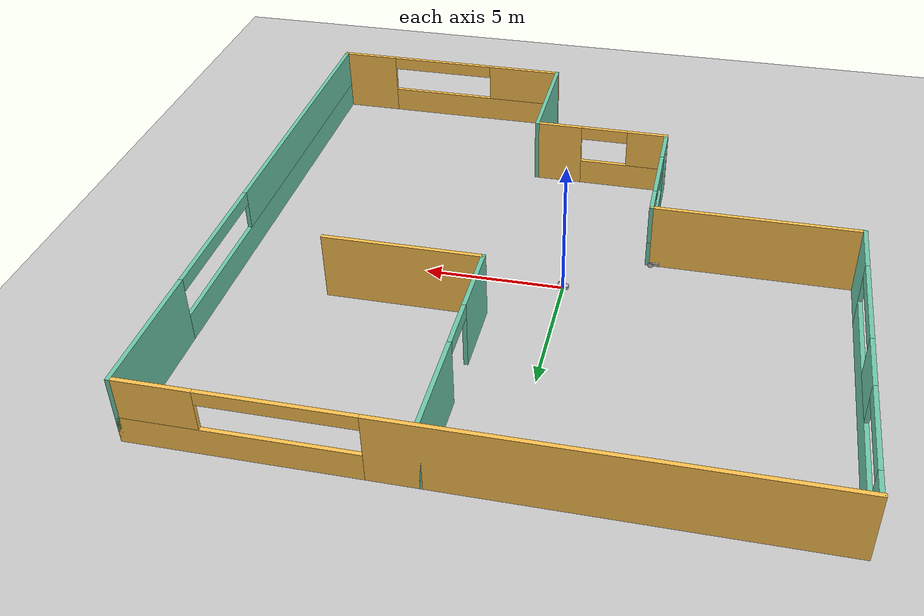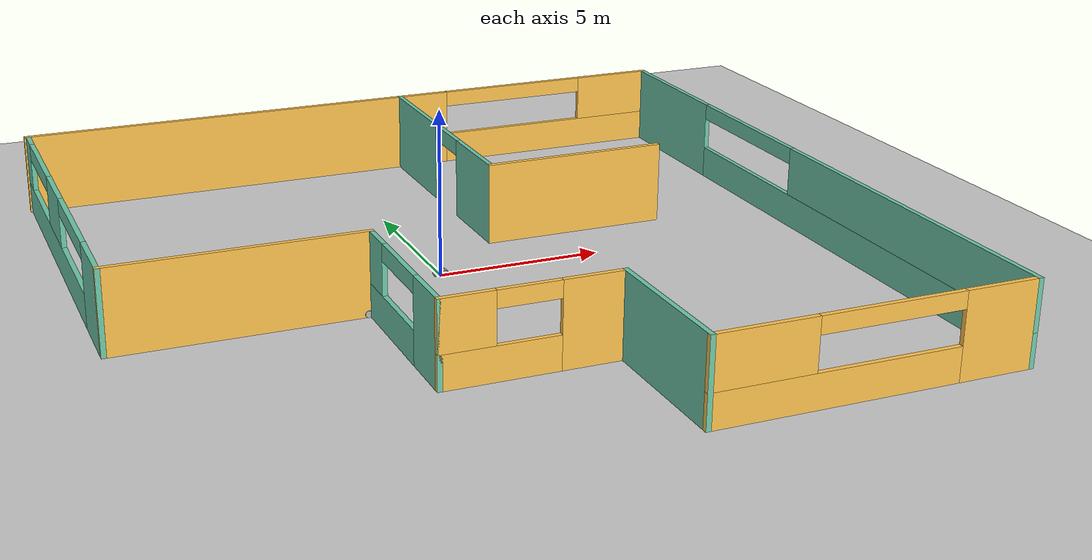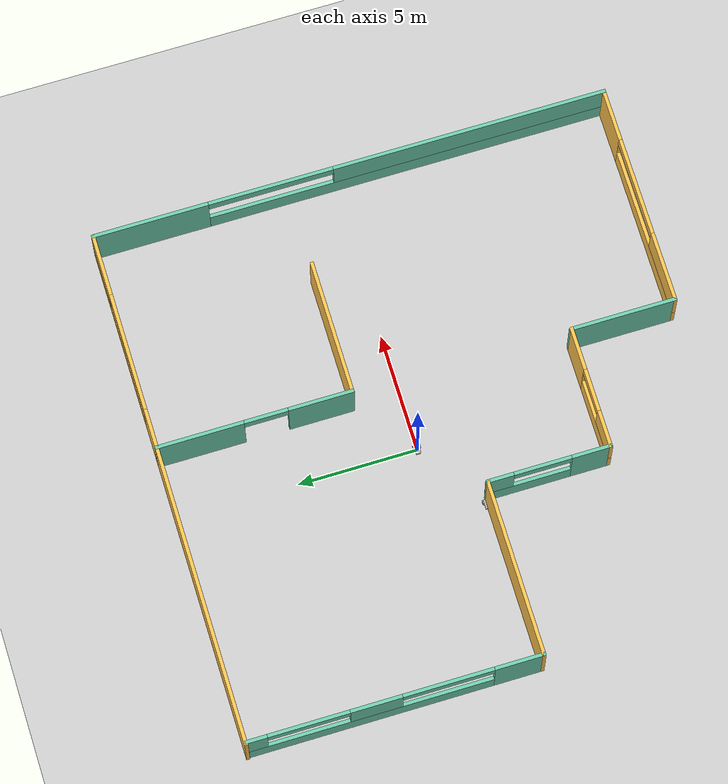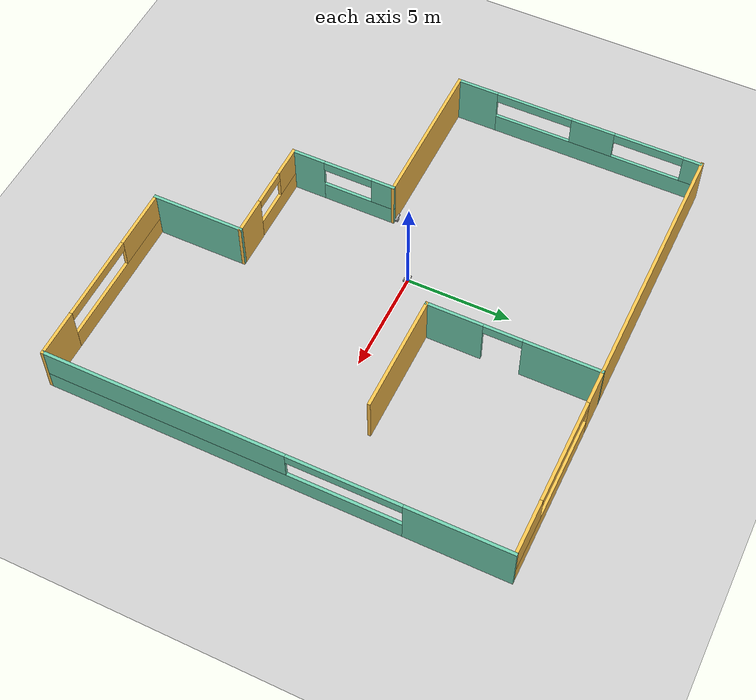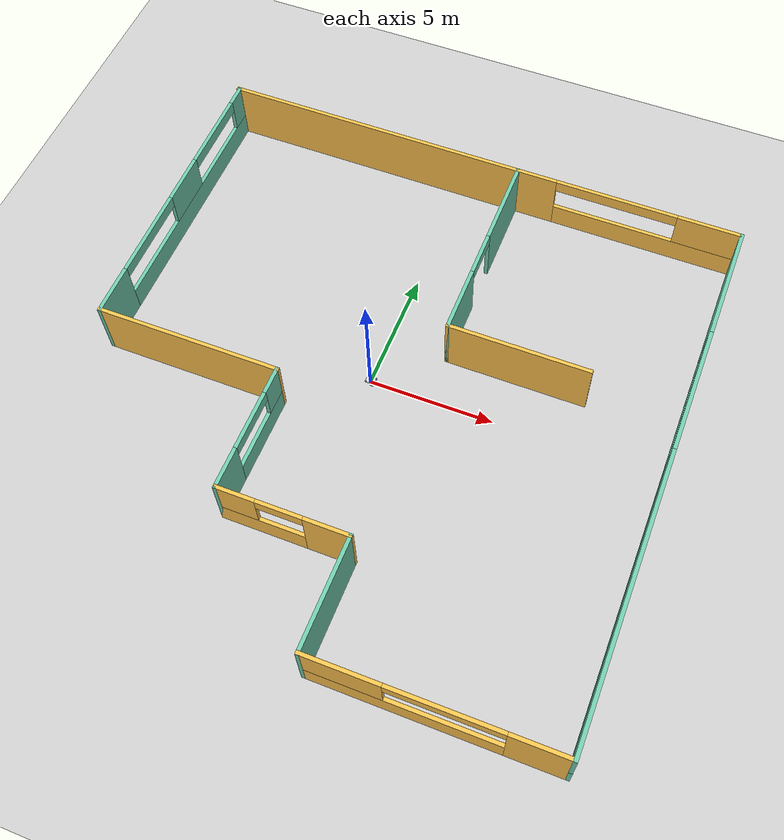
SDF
<sdf version="1.7">
 <world name="default">
  <plugin name="hello" filename="libhello.so"/>
  <include><uri>model://sun</uri></include>
  <include><uri>model://ground_plane</uri></include>
  <gravity>0 0 -9.8</gravity>
  <magnetic_field>6e-06 2.3e-05 -4.2e-05</magnetic_field>
  <atmosphere type="adiabatic"/>
  <physics type="ode">
   <max_step_size>0.001</max_step_size>
   <real_time_factor>1</real_time_factor>
   <real_time_update_rate>1000</real_time_update_rate>
  </physics>
  <scene><ambient>0.4 0.4 0.4 1</ambient><background>0.7 0.7 0.7 1</background><shadows>1</shadows></scene>
  <spherical_coordinates>
   <surface_model>EARTH_WGS84</surface_model>
   <latitude_deg>0</latitude_deg>
   <longitude_deg>0</longitude_deg>
   <elevation>0</elevation>
   <heading_deg>0</heading_deg>
  </spherical_coordinates>
  <model name="ground_floor">
   <pose>0.089475 -0.156422 0 0 -0 0</pose>
   <include><uri>model://ground_floor</uri></include>
  </model>
  <model name="robot_1"><include><uri>model://robot/simple_chassis</uri></include></model>
  <model name="robot_2">
   <include><uri>model://robot/simple_chassis</uri><pose>-3 -2 0 0 0 0</pose></include>
  </model>
 </world>
</sdf>

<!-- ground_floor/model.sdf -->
<sdf version='1.7'>
    <model name='ground_floor'>
      <pose>0.672639 -0.551121 0 0 -0 0</pose>
      <link name='Wall_0'>
        <pose>-1e-06 10.8 0 0 -0 0</pose>
        <visual name='Wall_0_Visual_0'>
          <pose>-3.85063 0 1.25 0 -0 0</pose>
          <geometry>
            <box>
              <size>14.2987 0.15 2.5</size>
            </box>
          </geometry>
          <material>
            <script>
              <uri>file://media/materials/scripts/gazebo.material</uri>
              <name>Gazebo/Grey</name>
            </script>
            <ambient>1 0.764706 0.305882 1</ambient>
          </material>
          <meta>
            <layer>0</layer>
          </meta>
        </visual>
        <collision name='Wall_0_Collision_0'>
          <geometry>
            <box>
              <size>14.2987 0.15 2.5</size>
            </box>
          </geometry>
          <pose>-3.85063 0 1.25 0 -0 0</pose>
          <max_contacts>10</max_contacts>
          <surface>
            <contact>
              <ode/>
            </contact>
            <bounce/>
            <friction>
              <torsional>
                <ode/>
              </torsional>
              <ode/>
            </friction>
          </surface>
        </collision>
        <visual name='Wall_0_Visual_1'>
          <pose>7.14937 0 0.5 0 -0 0</pose>
          <geometry>
            <box>
              <size>7.70126 0.15 1</size>
            </box>
          </geometry>
          <material>
            <script>
              <uri>file://media/materials/scripts/gazebo.material</uri>
              <name>Gazebo/Grey</name>
            </script>
            <ambient>1 0.764706 0.305882 1</ambient>
          </material>
          <meta>
            <layer>0</layer>
          </meta>
        </visual>
        <collision name='Wall_0_Collision_1'>
          <geometry>
            <box>
              <size>7.70126 0.15 1</size>
            </box>
          </geometry>
          <pose>7.14937 0 0.5 0 -0 0</pose>
          <max_contacts>10</max_contacts>
          <surface>
            <contact>
              <ode/>
            </contact>
            <bounce/>
            <friction>
              <torsional>
                <ode/>
              </torsional>
              <ode/>
            </friction>
          </surface>
        </collision>
        <visual name='Wall_0_Visual_2'>
          <pose>9.66137 0 1.75 0 -0 0</pose>
          <geometry>
            <box>
              <size>2.67726 0.15 1.5</size>
            </box>
          </geometry>
          <material>
            <script>
              <uri>file://media/materials/scripts/gazebo.material</uri>
              <name>Gazebo/Grey</name>
            </script>
            <ambient>1 0.764706 0.305882 1</ambient>
          </material>
          <meta>
            <layer>0</layer>
          </meta>
        </visual>
        <collision name='Wall_0_Collision_2'>
          <geometry>
            <box>
              <size>2.67726 0.15 1.5</size>
            </box>
          </geometry>
          <pose>9.66137 0 1.75 0 -0 0</pose>
          <max_contacts>10</max_contacts>
          <surface>
            <contact>
              <ode/>
            </contact>
            <bounce/>
            <friction>
              <torsional>
                <ode/>
              </torsional>
              <ode/>
            </friction>
          </surface>
        </collision>
        <visual name='Wall_0_Visual_3'>
          <pose>5.81074 0 2.25 0 -0 0</pose>
          <geometry>
            <box>
              <size>5.024 0.15 0.5</size>
            </box>
          </geometry>
          <material>
            <script>
              <uri>file://media/materials/scripts/gazebo.material</uri>
              <name>Gazebo/Grey</name>
            </script>
            <ambient>1 0.764706 0.305882 1</ambient>
          </material>
          <meta>
            <layer>0</layer>
          </meta>
        </visual>
        <collision name='Wall_0_Collision_3'>
          <geometry>
            <box>
              <size>5.024 0.15 0.5</size>
            </box>
          </geometry>
          <pose>5.81074 0 2.25 0 -0 0</pose>
          <max_contacts>10</max_contacts>
          <surface>
            <contact>
              <ode/>
            </contact>
            <bounce/>
            <friction>
              <torsional>
                <ode/>
              </torsional>
              <ode/>
            </friction>
          </surface>
        </collision>
        <self_collide>0</self_collide>
        <enable_wind>0</enable_wind>
        <kinematic>0</kinematic>
      </link>
      <link name='Wall_1'>
        <pose>10.925 0 0 0 0 -1.5708</pose>
        <visual name='Wall_1_Visual_0'>
          <pose>-8.42693 0 1.25 0 -0 0</pose>
          <geometry>
            <box>
              <size>4.89614 0.15 2.5</size>
            </box>
          </geometry>
          <material>
            <script>
              <uri>file://media/materials/scripts/gazebo.material</uri>
              <name>Gazebo/Grey</name>
            </script>
            <ambient>0.435294 0.796078 0.67451 1</ambient>
          </material>
          <meta>
            <layer>0</layer>
          </meta>
        </visual>
        <collision name='Wall_1_Collision_0'>
          <geometry>
            <box>
              <size>4.89614 0.15 2.5</size>
            </box>
          </geometry>
          <pose>-8.42693 0 1.25 0 -0 0</pose>
          <max_contacts>10</max_contacts>
          <surface>
            <contact>
              <ode/>
            </contact>
            <bounce/>
            <friction>
              <torsional>
                <ode/>
              </torsional>
              <ode/>
            </friction>
          </surface>
        </collision>
        <visual name='Wall_1_Visual_1'>
          <pose>2.44807 0 0.5 0 -0 0</pose>
          <geometry>
            <box>
              <size>16.8539 0.15 1</size>
            </box>
          </geometry>
          <material>
            <script>
              <uri>file://media/materials/scripts/gazebo.material</uri>
              <name>Gazebo/Grey</name>
            </script>
            <ambient>0.435294 0.796078 0.67451 1</ambient>
          </material>
          <meta>
            <layer>0</layer>
          </meta>
        </visual>
        <collision name='Wall_1_Collision_1'>
          <geometry>
            <box>
              <size>16.8539 0.15 1</size>
            </box>
          </geometry>
          <pose>2.44807 0 0.5 0 -0 0</pose>
          <max_contacts>10</max_contacts>
          <surface>
            <contact>
              <ode/>
            </contact>
            <bounce/>
            <friction>
              <torsional>
                <ode/>
              </torsional>
              <ode/>
            </friction>
          </surface>
        </collision>
        <visual name='Wall_1_Visual_2'>
          <pose>5.08057 0 1.75 0 -0 0</pose>
          <geometry>
            <box>
              <size>11.5889 0.15 1.5</size>
            </box>
          </geometry>
          <material>
            <script>
              <uri>file://media/materials/scripts/gazebo.material</uri>
              <name>Gazebo/Grey</name>
            </script>
            <ambient>0.435294 0.796078 0.67451 1</ambient>
          </material>
          <meta>
            <layer>0</layer>
          </meta>
        </visual>
        <collision name='Wall_1_Collision_2'>
          <geometry>
            <box>
              <size>11.5889 0.15 1.5</size>
            </box>
          </geometry>
          <pose>5.08057 0 1.75 0 -0 0</pose>
          <max_contacts>10</max_contacts>
          <surface>
            <contact>
              <ode/>
            </contact>
            <bounce/>
            <friction>
              <torsional>
                <ode/>
              </torsional>
              <ode/>
            </friction>
          </surface>
        </collision>
        <visual name='Wall_1_Visual_3'>
          <pose>-3.34636 0 2.25 0 -0 0</pose>
          <geometry>
            <box>
              <size>5.265 0.15 0.5</size>
            </box>
          </geometry>
          <material>
            <script>
              <uri>file://media/materials/scripts/gazebo.material</uri>
              <name>Gazebo/Grey</name>
            </script>
            <ambient>0.435294 0.796078 0.67451 1</ambient>
          </material>
          <meta>
            <layer>0</layer>
          </meta>
        </visual>
        <collision name='Wall_1_Collision_3'>
          <geometry>
            <box>
              <size>5.265 0.15 0.5</size>
            </box>
          </geometry>
          <pose>-3.34636 0 2.25 0 -0 0</pose>
          <max_contacts>10</max_contacts>
          <surface>
            <contact>
              <ode/>
            </contact>
            <bounce/>
            <friction>
              <torsional>
                <ode/>
              </torsional>
              <ode/>
            </friction>
          </surface>
        </collision>
        <self_collide>0</self_collide>
        <enable_wind>0</enable_wind>
        <kinematic>0</kinematic>
      </link>
      <link name='Wall_10'>
        <collision name='Wall_10_Collision'>
          <geometry>
            <box>
              <size>5.75 0.15 2.5</size>
            </box>
          </geometry>
          <pose>0 0 1.25 0 -0 0</pose>
          <max_contacts>10</max_contacts>
          <surface>
            <contact>
              <ode/>
            </contact>
            <bounce/>
            <friction>
              <torsional>
                <ode/>
              </torsional>
              <ode/>
            </friction>
          </surface>
        </collision>
        <visual name='Wall_10_Visual'>
          <pose>0 0 1.25 0 -0 0</pose>
          <geometry>
            <box>
              <size>5.75 0.15 2.5</size>
            </box>
          </geometry>
          <material>
            <script>
              <uri>file://media/materials/scripts/gazebo.material</uri>
              <name>Gazebo/Grey</name>
            </script>
            <ambient>1 0.764706 0.305882 1</ambient>
          </material>
          <meta>
            <layer>0</layer>
          </meta>
        </visual>
        <pose>4.43646 2.7 0 0 -0 0</pose>
        <self_collide>0</self_collide>
        <enable_wind>0</enable_wind>
        <kinematic>0</kinematic>
      </link>
      <link name='Wall_2'>
        <pose>6.25 -10.8 0 0 -0 3.14159</pose>
        <visual name='Wall_2_Visual_0'>
          <pose>-3.60608 0 1.25 0 -0 0</pose>
          <geometry>
            <box>
              <size>2.28785 0.15 2.5</size>
            </box>
          </geometry>
          <material>
            <script>
              <uri>file://media/materials/scripts/gazebo.material</uri>
              <name>Gazebo/Grey</name>
            </script>
            <ambient>1 0.764706 0.305882 1</ambient>
          </material>
          <meta>
            <layer>0</layer>
          </meta>
        </visual>
        <collision name='Wall_2_Collision_0'>
          <geometry>
            <box>
              <size>2.28785 0.15 2.5</size>
            </box>
          </geometry>
          <pose>-3.60608 0 1.25 0 -0 0</pose>
          <max_contacts>10</max_contacts>
          <surface>
            <contact>
              <ode/>
            </contact>
            <bounce/>
            <friction>
              <torsional>
                <ode/>
              </torsional>
              <ode/>
            </friction>
          </surface>
        </collision>
        <visual name='Wall_2_Visual_1'>
          <pose>1.14393 0 0.5 0 -0 0</pose>
          <geometry>
            <box>
              <size>7.21215 0.15 1</size>
            </box>
          </geometry>
          <material>
            <script>
              <uri>file://media/materials/scripts/gazebo.material</uri>
              <name>Gazebo/Grey</name>
            </script>
            <ambient>1 0.764706 0.305882 1</ambient>
          </material>
          <meta>
            <layer>0</layer>
          </meta>
        </visual>
        <collision name='Wall_2_Collision_1'>
          <geometry>
            <box>
              <size>7.21215 0.15 1</size>
            </box>
          </geometry>
          <pose>1.14393 0 0.5 0 -0 0</pose>
          <max_contacts>10</max_contacts>
          <surface>
            <contact>
              <ode/>
            </contact>
            <bounce/>
            <friction>
              <torsional>
                <ode/>
              </torsional>
              <ode/>
            </friction>
          </surface>
        </collision>
        <visual name='Wall_2_Visual_2'>
          <pose>3.24993 0 1.75 0 -0 0</pose>
          <geometry>
            <box>
              <size>3.00015 0.15 1.5</size>
            </box>
          </geometry>
          <material>
            <script>
              <uri>file://media/materials/scripts/gazebo.material</uri>
              <name>Gazebo/Grey</name>
            </script>
            <ambient>1 0.764706 0.305882 1</ambient>
          </material>
          <meta>
            <layer>0</layer>
          </meta>
        </visual>
        <collision name='Wall_2_Collision_2'>
          <geometry>
            <box>
              <size>3.00015 0.15 1.5</size>
            </box>
          </geometry>
          <pose>3.24993 0 1.75 0 -0 0</pose>
          <max_contacts>10</max_contacts>
          <surface>
            <contact>
              <ode/>
            </contact>
            <bounce/>
            <friction>
              <torsional>
                <ode/>
              </torsional>
              <ode/>
            </friction>
          </surface>
        </collision>
        <visual name='Wall_2_Visual_3'>
          <pose>-0.35615 0 2.25 0 -0 0</pose>
          <geometry>
            <box>
              <size>4.212 0.15 0.5</size>
            </box>
          </geometry>
          <material>
            <script>
              <uri>file://media/materials/scripts/gazebo.material</uri>
              <name>Gazebo/Grey</name>
            </script>
            <ambient>1 0.764706 0.305882 1</ambient>
          </material>
          <meta>
            <layer>0</layer>
          </meta>
        </visual>
        <collision name='Wall_2_Collision_3'>
          <geometry>
            <box>
              <size>4.212 0.15 0.5</size>
            </box>
          </geometry>
          <pose>-0.35615 0 2.25 0 -0 0</pose>
          <max_contacts>10</max_contacts>
          <surface>
            <contact>
              <ode/>
            </contact>
            <bounce/>
            <friction>
              <torsional>
                <ode/>
              </torsional>
              <ode/>
            </friction>
          </surface>
        </collision>
        <self_collide>0</self_collide>
        <enable_wind>0</enable_wind>
        <kinematic>0</kinematic>
      </link>
      <link name='Wall_3'>
        <collision name='Wall_3_Collision'>
          <geometry>
            <box>
              <size>4.5 0.15 2.5</size>
            </box>
          </geometry>
          <pose>0 0 1.25 0 -0 0</pose>
          <max_contacts>10</max_contacts>
          <surface>
            <contact>
              <ode/>
            </contact>
            <bounce/>
            <friction>
              <torsional>
                <ode/>
              </torsional>
              <ode/>
            </friction>
          </surface>
        </collision>
        <visual name='Wall_3_Visual'>
          <pose>0 0 1.25 0 -0 0</pose>
          <geometry>
            <box>
              <size>4.5 0.15 2.5</size>
            </box>
          </geometry>
          <material>
            <script>
              <uri>file://media/materials/scripts/gazebo.material</uri>
              <name>Gazebo/Grey</name>
            </script>
            <ambient>0.435294 0.796078 0.67451 1</ambient>
          </material>
          <meta>
            <layer>0</layer>
          </meta>
        </visual>
        <pose>1.575 -8.625 0 0 -0 1.5708</pose>
        <self_collide>0</self_collide>
        <enable_wind>0</enable_wind>
        <kinematic>0</kinematic>
      </link>
      <link name='Wall_4'>
        <pose>-0.975001 -6.45 0 0 -0 3.14159</pose>
        <visual name='Wall_4_Visual_0'>
          <pose>-1.69584 0 1.25 0 -0 0</pose>
          <geometry>
            <box>
              <size>1.85833 0.15 2.5</size>
            </box>
          </geometry>
          <material>
            <script>
              <uri>file://media/materials/scripts/gazebo.material</uri>
              <name>Gazebo/Grey</name>
            </script>
            <ambient>1 0.764706 0.305882 1</ambient>
          </material>
          <meta>
            <layer>0</layer>
          </meta>
        </visual>
        <collision name='Wall_4_Collision_0'>
          <geometry>
            <box>
              <size>1.85833 0.15 2.5</size>
            </box>
          </geometry>
          <pose>-1.69584 0 1.25 0 -0 0</pose>
          <max_contacts>10</max_contacts>
          <surface>
            <contact>
              <ode/>
            </contact>
            <bounce/>
            <friction>
              <torsional>
                <ode/>
              </torsional>
              <ode/>
            </friction>
          </surface>
        </collision>
        <visual name='Wall_4_Visual_1'>
          <pose>0.929163 0 0.5 0 -0 0</pose>
          <geometry>
            <box>
              <size>3.39167 0.15 1</size>
            </box>
          </geometry>
          <material>
            <script>
              <uri>file://media/materials/scripts/gazebo.material</uri>
              <name>Gazebo/Grey</name>
            </script>
            <ambient>1 0.764706 0.305882 1</ambient>
          </material>
          <meta>
            <layer>0</layer>
          </meta>
        </visual>
        <collision name='Wall_4_Collision_1'>
          <geometry>
            <box>
              <size>3.39167 0.15 1</size>
            </box>
          </geometry>
          <pose>0.929163 0 0.5 0 -0 0</pose>
          <max_contacts>10</max_contacts>
          <surface>
            <contact>
              <ode/>
            </contact>
            <bounce/>
            <friction>
              <torsional>
                <ode/>
              </torsional>
              <ode/>
            </friction>
          </surface>
        </collision>
        <visual name='Wall_4_Visual_2'>
          <pose>1.82916 0 1.75 0 -0 0</pose>
          <geometry>
            <box>
              <size>1.59167 0.15 1.5</size>
            </box>
          </geometry>
          <material>
            <script>
              <uri>file://media/materials/scripts/gazebo.material</uri>
              <name>Gazebo/Grey</name>
            </script>
            <ambient>1 0.764706 0.305882 1</ambient>
          </material>
          <meta>
            <layer>0</layer>
          </meta>
        </visual>
        <collision name='Wall_4_Collision_2'>
          <geometry>
            <box>
              <size>1.59167 0.15 1.5</size>
            </box>
          </geometry>
          <pose>1.82916 0 1.75 0 -0 0</pose>
          <max_contacts>10</max_contacts>
          <surface>
            <contact>
              <ode/>
            </contact>
            <bounce/>
            <friction>
              <torsional>
                <ode/>
              </torsional>
              <ode/>
            </friction>
          </surface>
        </collision>
        <visual name='Wall_4_Visual_3'>
          <pose>0.133326 0 2.25 0 -0 0</pose>
          <geometry>
            <box>
              <size>1.8 0.15 0.5</size>
            </box>
          </geometry>
          <material>
            <script>
              <uri>file://media/materials/scripts/gazebo.material</uri>
              <name>Gazebo/Grey</name>
            </script>
            <ambient>1 0.764706 0.305882 1</ambient>
          </material>
          <meta>
            <layer>0</layer>
          </meta>
        </visual>
        <collision name='Wall_4_Collision_3'>
          <geometry>
            <box>
              <size>1.8 0.15 0.5</size>
            </box>
          </geometry>
          <pose>0.133326 0 2.25 0 -0 0</pose>
          <max_contacts>10</max_contacts>
          <surface>
            <contact>
              <ode/>
            </contact>
            <bounce/>
            <friction>
              <torsional>
                <ode/>
              </torsional>
              <ode/>
            </friction>
          </surface>
        </collision>
        <self_collide>0</self_collide>
        <enable_wind>0</enable_wind>
        <kinematic>0</kinematic>
      </link>
      <link name='Wall_5'>
        <pose>-3.525 -3.9 0 0 -0 1.5708</pose>
        <visual name='Wall_5_Visual_0'>
          <pose>-1.78127 0 1.25 0 -0 0</pose>
          <geometry>
            <box>
              <size>1.68745 0.15 2.5</size>
            </box>
          </geometry>
          <material>
            <script>
              <uri>file://media/materials/scripts/gazebo.material</uri>
              <name>Gazebo/Grey</name>
            </script>
            <ambient>0.435294 0.796078 0.67451 1</ambient>
          </material>
          <meta>
            <layer>0</layer>
          </meta>
        </visual>
        <collision name='Wall_5_Collision_0'>
          <geometry>
            <box>
              <size>1.68745 0.15 2.5</size>
            </box>
          </geometry>
          <pose>-1.78127 0 1.25 0 -0 0</pose>
          <max_contacts>10</max_contacts>
          <surface>
            <contact>
              <ode/>
            </contact>
            <bounce/>
            <friction>
              <torsional>
                <ode/>
              </torsional>
              <ode/>
            </friction>
          </surface>
        </collision>
        <visual name='Wall_5_Visual_1'>
          <pose>0.843725 0 0.5 0 -0 0</pose>
          <geometry>
            <box>
              <size>3.56255 0.15 1</size>
            </box>
          </geometry>
          <material>
            <script>
              <uri>file://media/materials/scripts/gazebo.material</uri>
              <name>Gazebo/Grey</name>
            </script>
            <ambient>0.435294 0.796078 0.67451 1</ambient>
          </material>
          <meta>
            <layer>0</layer>
          </meta>
        </visual>
        <collision name='Wall_5_Collision_1'>
          <geometry>
            <box>
              <size>3.56255 0.15 1</size>
            </box>
          </geometry>
          <pose>0.843725 0 0.5 0 -0 0</pose>
          <max_contacts>10</max_contacts>
          <surface>
            <contact>
              <ode/>
            </contact>
            <bounce/>
            <friction>
              <torsional>
                <ode/>
              </torsional>
              <ode/>
            </friction>
          </surface>
        </collision>
        <visual name='Wall_5_Visual_2'>
          <pose>2.04822 0 1.75 0 -0 0</pose>
          <geometry>
            <box>
              <size>1.15355 0.15 1.5</size>
            </box>
          </geometry>
          <material>
            <script>
              <uri>file://media/materials/scripts/gazebo.material</uri>
              <name>Gazebo/Grey</name>
            </script>
            <ambient>0.435294 0.796078 0.67451 1</ambient>
          </material>
          <meta>
            <layer>0</layer>
          </meta>
        </visual>
        <collision name='Wall_5_Collision_2'>
          <geometry>
            <box>
              <size>1.15355 0.15 1.5</size>
            </box>
          </geometry>
          <pose>2.04822 0 1.75 0 -0 0</pose>
          <max_contacts>10</max_contacts>
          <surface>
            <contact>
              <ode/>
            </contact>
            <bounce/>
            <friction>
              <torsional>
                <ode/>
              </torsional>
              <ode/>
            </friction>
          </surface>
        </collision>
        <visual name='Wall_5_Visual_3'>
          <pose>0.266949 0 2.25 0 -0 0</pose>
          <geometry>
            <box>
              <size>2.409 0.15 0.5</size>
            </box>
          </geometry>
          <material>
            <script>
              <uri>file://media/materials/scripts/gazebo.material</uri>
              <name>Gazebo/Grey</name>
            </script>
            <ambient>0.435294 0.796078 0.67451 1</ambient>
          </material>
          <meta>
            <layer>0</layer>
          </meta>
        </visual>
        <collision name='Wall_5_Collision_3'>
          <geometry>
            <box>
              <size>2.409 0.15 0.5</size>
            </box>
          </geometry>
          <pose>0.266949 0 2.25 0 -0 0</pose>
          <max_contacts>10</max_contacts>
          <surface>
            <contact>
              <ode/>
            </contact>
            <bounce/>
            <friction>
              <torsional>
                <ode/>
              </torsional>
              <ode/>
            </friction>
          </surface>
        </collision>
        <self_collide>0</self_collide>
        <enable_wind>0</enable_wind>
        <kinematic>0</kinematic>
      </link>
      <link name='Wall_6'>
        <collision name='Wall_6_Collision'>
          <geometry>
            <box>
              <size>7.5 0.15 2.5</size>
            </box>
          </geometry>
          <pose>0 0 1.25 0 -0 0</pose>
          <max_contacts>10</max_contacts>
          <surface>
            <contact>
              <ode/>
            </contact>
            <bounce/>
            <friction>
              <torsional>
                <ode/>
              </torsional>
              <ode/>
            </friction>
          </surface>
        </collision>
        <visual name='Wall_6_Visual'>
          <pose>0 0 1.25 0 -0 0</pose>
          <geometry>
            <box>
              <size>7.5 0.15 2.5</size>
            </box>
          </geometry>
          <material>
            <script>
              <uri>file://media/materials/scripts/gazebo.material</uri>
              <name>Gazebo/Grey</name>
            </script>
            <ambient>1 0.764706 0.305882 1</ambient>
          </material>
          <meta>
            <layer>0</layer>
          </meta>
        </visual>
        <pose>-7.2 -1.35 0 0 -0 3.14159</pose>
        <self_collide>0</self_collide>
        <enable_wind>0</enable_wind>
        <kinematic>0</kinematic>
      </link>
      <link name='Wall_7'>
        <pose>-10.875 4.7 0 0 -0 1.5708</pose>
        <visual name='Wall_7_Visual_0'>
          <pose>-5.08309 0 1.25 0 -0 0</pose>
          <geometry>
            <box>
              <size>2.08381 0.15 2.5</size>
            </box>
          </geometry>
          <material>
            <script>
              <uri>file://media/materials/scripts/gazebo.material</uri>
              <name>Gazebo/Grey</name>
            </script>
            <ambient>0.435294 0.796078 0.67451 1</ambient>
          </material>
          <meta>
            <layer>0</layer>
          </meta>
        </visual>
        <collision name='Wall_7_Collision_0'>
          <geometry>
            <box>
              <size>2.08381 0.15 2.5</size>
            </box>
          </geometry>
          <pose>-5.08309 0 1.25 0 -0 0</pose>
          <max_contacts>10</max_contacts>
          <surface>
            <contact>
              <ode/>
            </contact>
            <bounce/>
            <friction>
              <torsional>
                <ode/>
              </torsional>
              <ode/>
            </friction>
          </surface>
        </collision>
        <visual name='Wall_7_Visual_1'>
          <pose>1.04191 0 0.5 0 -0 0</pose>
          <geometry>
            <box>
              <size>10.1662 0.15 1</size>
            </box>
          </geometry>
          <material>
            <script>
              <uri>file://media/materials/scripts/gazebo.material</uri>
              <name>Gazebo/Grey</name>
            </script>
            <ambient>0.435294 0.796078 0.67451 1</ambient>
          </material>
          <meta>
            <layer>0</layer>
          </meta>
        </visual>
        <collision name='Wall_7_Collision_1'>
          <geometry>
            <box>
              <size>10.1662 0.15 1</size>
            </box>
          </geometry>
          <pose>1.04191 0 0.5 0 -0 0</pose>
          <max_contacts>10</max_contacts>
          <surface>
            <contact>
              <ode/>
            </contact>
            <bounce/>
            <friction>
              <torsional>
                <ode/>
              </torsional>
              <ode/>
            </friction>
          </surface>
        </collision>
        <visual name='Wall_7_Visual_2'>
          <pose>0.7888 0 1.75 0 -0 0</pose>
          <geometry>
            <box>
              <size>2.13598 0.15 1.5</size>
            </box>
          </geometry>
          <material>
            <script>
              <uri>file://media/materials/scripts/gazebo.material</uri>
              <name>Gazebo/Grey</name>
            </script>
            <ambient>0.435294 0.796078 0.67451 1</ambient>
          </material>
          <meta>
            <layer>0</layer>
          </meta>
        </visual>
        <collision name='Wall_7_Collision_2'>
          <geometry>
            <box>
              <size>2.13598 0.15 1.5</size>
            </box>
          </geometry>
          <pose>0.7888 0 1.75 0 -0 0</pose>
          <max_contacts>10</max_contacts>
          <surface>
            <contact>
              <ode/>
            </contact>
            <bounce/>
            <friction>
              <torsional>
                <ode/>
              </torsional>
              <ode/>
            </friction>
          </surface>
        </collision>
        <visual name='Wall_7_Visual_3'>
          <pose>5.67389 0 1.75 0 -0 0</pose>
          <geometry>
            <box>
              <size>0.902212 0.15 1.5</size>
            </box>
          </geometry>
          <material>
            <script>
              <uri>file://media/materials/scripts/gazebo.material</uri>
              <name>Gazebo/Grey</name>
            </script>
            <ambient>0.435294 0.796078 0.67451 1</ambient>
          </material>
          <meta>
            <layer>0</layer>
          </meta>
        </visual>
        <collision name='Wall_7_Collision_3'>
          <geometry>
            <box>
              <size>0.902212 0.15 1.5</size>
            </box>
          </geometry>
          <pose>5.67389 0 1.75 0 -0 0</pose>
          <max_contacts>10</max_contacts>
          <surface>
            <contact>
              <ode/>
            </contact>
            <bounce/>
            <friction>
              <torsional>
                <ode/>
              </torsional>
              <ode/>
            </friction>
          </surface>
        </collision>
        <visual name='Wall_7_Visual_4'>
          <pose>-2.16019 0 2.25 0 -0 0</pose>
          <geometry>
            <box>
              <size>3.762 0.15 0.5</size>
            </box>
          </geometry>
          <material>
            <script>
              <uri>file://media/materials/scripts/gazebo.material</uri>
              <name>Gazebo/Grey</name>
            </script>
            <ambient>0.435294 0.796078 0.67451 1</ambient>
          </material>
          <meta>
            <layer>0</layer>
          </meta>
        </visual>
        <collision name='Wall_7_Collision_4'>
          <geometry>
            <box>
              <size>3.762 0.15 0.5</size>
            </box>
          </geometry>
          <pose>-2.16019 0 2.25 0 -0 0</pose>
          <max_contacts>10</max_contacts>
          <surface>
            <contact>
              <ode/>
            </contact>
            <bounce/>
            <friction>
              <torsional>
                <ode/>
              </torsional>
              <ode/>
            </friction>
          </surface>
        </collision>
        <visual name='Wall_7_Visual_5'>
          <pose>3.53979 0 2.25 0 -0 0</pose>
          <geometry>
            <box>
              <size>3.366 0.15 0.5</size>
            </box>
          </geometry>
          <material>
            <script>
              <uri>file://media/materials/scripts/gazebo.material</uri>
              <name>Gazebo/Grey</name>
            </script>
            <ambient>0.435294 0.796078 0.67451 1</ambient>
          </material>
          <meta>
            <layer>0</layer>
          </meta>
        </visual>
        <collision name='Wall_7_Collision_5'>
          <geometry>
            <box>
              <size>3.366 0.15 0.5</size>
            </box>
          </geometry>
          <pose>3.53979 0 2.25 0 -0 0</pose>
          <max_contacts>10</max_contacts>
          <surface>
            <contact>
              <ode/>
            </contact>
            <bounce/>
            <friction>
              <torsional>
                <ode/>
              </torsional>
              <ode/>
            </friction>
          </surface>
        </collision>
        <self_collide>0</self_collide>
        <enable_wind>0</enable_wind>
        <kinematic>0</kinematic>
      </link>
      <link name='Wall_9'>
        <pose>1.63646 6.75 0 0 0 -1.5708</pose>
        <visual name='Wall_9_Visual_0'>
          <pose>-2.28522 0 1.25 0 -0 0</pose>
          <geometry>
            <box>
              <size>3.67956 0.15 2.5</size>
            </box>
          </geometry>
          <material>
            <script>
              <uri>file://media/materials/scripts/gazebo.material</uri>
              <name>Gazebo/Grey</name>
            </script>
            <ambient>0.435294 0.796078 0.67451 1</ambient>
          </material>
          <meta>
            <layer>0</layer>
          </meta>
        </visual>
        <collision name='Wall_9_Collision_0'>
          <geometry>
            <box>
              <size>3.67956 0.15 2.5</size>
            </box>
          </geometry>
          <pose>-2.28522 0 1.25 0 -0 0</pose>
          <max_contacts>10</max_contacts>
          <surface>
            <contact>
              <ode/>
            </contact>
            <bounce/>
            <friction>
              <torsional>
                <ode/>
              </torsional>
              <ode/>
            </friction>
          </surface>
        </collision>
        <visual name='Wall_9_Visual_1'>
          <pose>2.75228 0 1.25 0 -0 0</pose>
          <geometry>
            <box>
              <size>2.74544 0.15 2.5</size>
            </box>
          </geometry>
          <material>
            <script>
              <uri>file://media/materials/scripts/gazebo.material</uri>
              <name>Gazebo/Grey</name>
            </script>
            <ambient>0.435294 0.796078 0.67451 1</ambient>
          </material>
          <meta>
            <layer>0</layer>
          </meta>
        </visual>
        <collision name='Wall_9_Collision_1'>
          <geometry>
            <box>
              <size>2.74544 0.15 2.5</size>
            </box>
          </geometry>
          <pose>2.75228 0 1.25 0 -0 0</pose>
          <max_contacts>10</max_contacts>
          <surface>
            <contact>
              <ode/>
            </contact>
            <bounce/>
            <friction>
              <torsional>
                <ode/>
              </torsional>
              <ode/>
            </friction>
          </surface>
        </collision>
        <visual name='Wall_9_Visual_2'>
          <pose>0.46706 0 2.25 0 -0 0</pose>
          <geometry>
            <box>
              <size>1.825 0.15 0.5</size>
            </box>
          </geometry>
          <material>
            <script>
              <uri>file://media/materials/scripts/gazebo.material</uri>
              <name>Gazebo/Grey</name>
            </script>
            <ambient>0.435294 0.796078 0.67451 1</ambient>
          </material>
          <meta>
            <layer>0</layer>
          </meta>
        </visual>
        <collision name='Wall_9_Collision_2'>
          <geometry>
            <box>
              <size>1.825 0.15 0.5</size>
            </box>
          </geometry>
          <pose>0.46706 0 2.25 0 -0 0</pose>
          <max_contacts>10</max_contacts>
          <surface>
            <contact>
              <ode/>
            </contact>
            <bounce/>
            <friction>
              <torsional>
                <ode/>
              </torsional>
              <ode/>
            </friction>
          </surface>
        </collision>
        <self_collide>0</self_collide>
        <enable_wind>0</enable_wind>
        <kinematic>0</kinematic>
      </link>
      <static>1</static>
    </model>
      <model name='ground_floor'>
        <pose>0.672639 -0.551121 0 0 -0 0</pose>
        <scale>1 1 1</scale>
        <link name='Wall_0'>
          <pose>0.672638 10.2489 0 0 -0 0</pose>
          <velocity>0 0 0 0 -0 0</velocity>
          <acceleration>0 0 0 0 -0 0</acceleration>
          <wrench>0 0 0 0 -0 0</wrench>
        </link>
        <link name='Wall_1'>
          <pose>11.5976 -0.551121 0 0 0 -1.5708</pose>
          <velocity>0 0 0 0 -0 0</velocity>
          <acceleration>0 0 0 0 -0 0</acceleration>
          <wrench>0 0 0 0 -0 0</wrench>
        </link>
        <link name='Wall_10'>
          <pose>5.1091 2.14888 0 0 -0 0</pose>
          <velocity>0 0 0 0 -0 0</velocity>
          <acceleration>0 0 0 0 -0 0</acceleration>
          <wrench>0 0 0 0 -0 0</wrench>
        </link>
        <link name='Wall_2'>
          <pose>6.92264 -11.3511 0 0 -0 3.14159</pose>
          <velocity>0 0 0 0 -0 0</velocity>
          <acceleration>0 0 0 0 -0 0</acceleration>
          <wrench>0 0 0 0 -0 0</wrench>
        </link>
        <link name='Wall_3'>
          <pose>2.24764 -9.17612 0 0 -0 1.5708</pose>
          <velocity>0 0 0 0 -0 0</velocity>
          <acceleration>0 0 0 0 -0 0</acceleration>
          <wrench>0 0 0 0 -0 0</wrench>
        </link>
        <link name='Wall_4'>
          <pose>-0.302362 -7.00112 0 0 -0 3.14159</pose>
          <velocity>0 0 0 0 -0 0</velocity>
          <acceleration>0 0 0 0 -0 0</acceleration>
          <wrench>0 0 0 0 -0 0</wrench>
        </link>
        <link name='Wall_5'>
          <pose>-2.85236 -4.45112 0 0 -0 1.5708</pose>
          <velocity>0 0 0 0 -0 0</velocity>
          <acceleration>0 0 0 0 -0 0</acceleration>
          <wrench>0 0 0 0 -0 0</wrench>
        </link>
        <link name='Wall_6'>
          <pose>-6.52736 -1.90112 0 0 -0 3.14159</pose>
          <velocity>0 0 0 0 -0 0</velocity>
          <acceleration>0 0 0 0 -0 0</acceleration>
          <wrench>0 0 0 0 -0 0</wrench>
        </link>
        <link name='Wall_7'>
          <pose>-10.2024 4.14888 0 0 -0 1.5708</pose>
          <velocity>0 0 0 0 -0 0</velocity>
          <acceleration>0 0 0 0 -0 0</acceleration>
          <wrench>0 0 0 0 -0 0</wrench>
        </link>
        <link name='Wall_9'>
          <pose>2.3091 6.19888 0 0 0 -1.5708</pose>
          <velocity>0 0 0 0 -0 0</velocity>
          <acceleration>0 0 0 0 -0 0</acceleration>
          <wrench>0 0 0 0 -0 0</wrench>
        </link>
      </model>
</sdf>

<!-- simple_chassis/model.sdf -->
<sdf version='1.4'>
    <model name="simple_chassis">
        <static>false</static>

        <link name='chassis'>
            <pose>0 0 .1 0 0 0</pose>
            <material>Gazebo/Blue</material>
            <collision name='collision'>
                <geometry>
                    <box>
                        <size> 0.4 0.2 0.1</size>
                    </box>
                </geometry>
            </collision>
            <visual name='visual'>
                <geometry>
                    <box>
                        <size>0.4 0.2 0.1</size>
                    </box>
                </geometry>
            </visual>
            <collision name='caster_collision'>
                <pose>-0.15 0 -0.05 0 0 0</pose>
                <geometry>
                    <sphere>
                        <radius>0.05</radius>
                    </sphere>
                </geometry>
                <surface>
                    <friction>
                        <ode>
                            <mu>0</mu>
                            <mu2>0</mu2>
                            <slip1>1.0</slip1>
                            <slip2>1.0</slip2>
                        </ode>
                    </friction>
                </surface>
            </collision>
            <visual name='caster_visual'>
                <pose>-0.15 0 -0.05 0 0 0 </pose>
                <geometry>
                    <sphere>
                        <radius>0.05</radius>
                    </sphere>
                </geometry>
            </visual>
        </link>
        <link name="left_wheel">
            <pose>0.1 0.13 0.1 0 1.5707 1.5707</pose>
            <collision name='collision'>
                <geometry>
                    <cylinder>
                        <radius>.1</radius>
                        <length>0.05</length>
                    </cylinder>
                </geometry>
            </collision>
            <visual name='visual'>
                <geometry>
                    <cylinder>
                        <radius>.1</radius>
                        <length>0.05</length>
                    </cylinder>
                </geometry>
            </visual>
        </link>
        <link name="right_wheel">
            <pose>0.1 -0.13 0.1 0 1.5707 1.5707</pose>
            <collision name='collision'>
                <geometry>
                    <cylinder>
                        <radius>.1</radius>
                        <length>0.05</length>
                    </cylinder>
                </geometry>
            </collision>
            <visual name='visual'>
                <geometry>
                    <cylinder>
                        <radius>.1</radius>
                        <length>0.05</length>
                    </cylinder>
                </geometry>
            </visual>
        </link>
        <joint type="revolute" name="left_wheel_hinge">
            <pose>0 0 -0.03 0 0 0</pose>
            <child>left_wheel</child>
            <parent>chassis</parent>
            <axis>
                <xyz>0 1 0</xyz>
            </axis>
        </joint>
        <joint type="revolute" name="right_wheel_hinge">
            <pose>0 0 0.03 0 0 0</pose>
            <child>right_wheel</child>
            <parent>chassis</parent>
            <axis>
                <xyz>0 1 0</xyz>
            </axis>
        </joint>
    </model>
</sdf>
